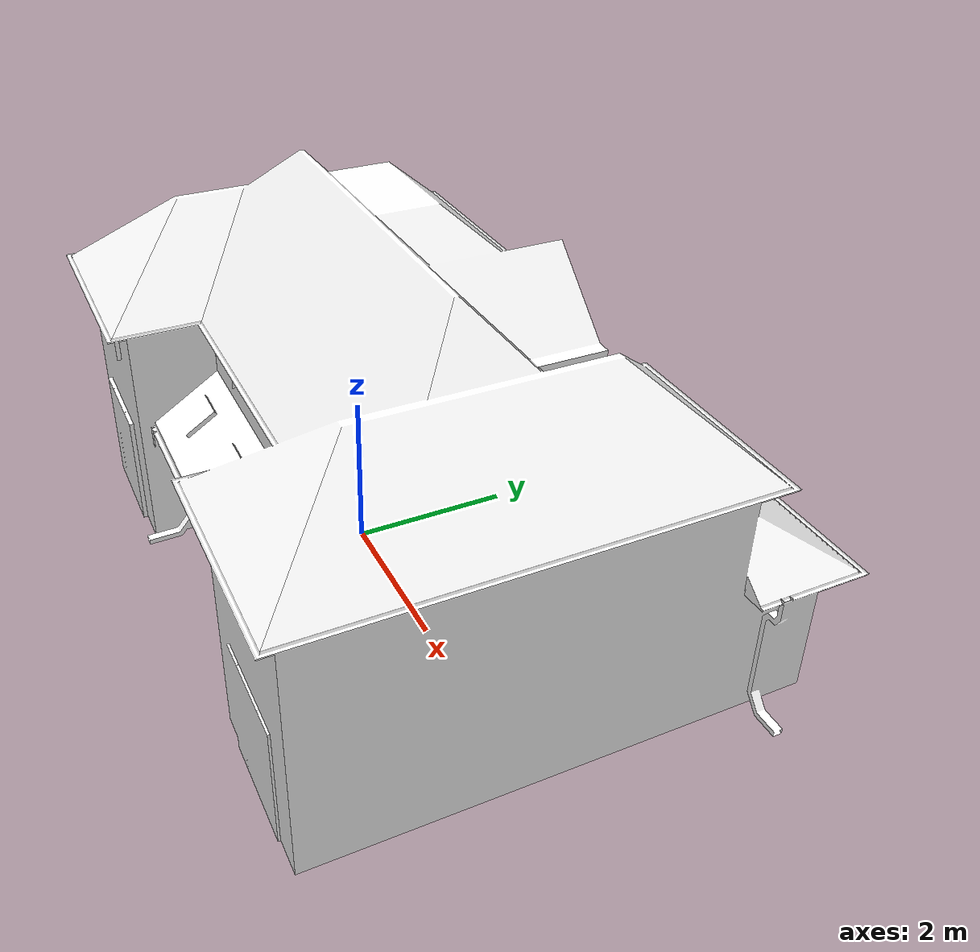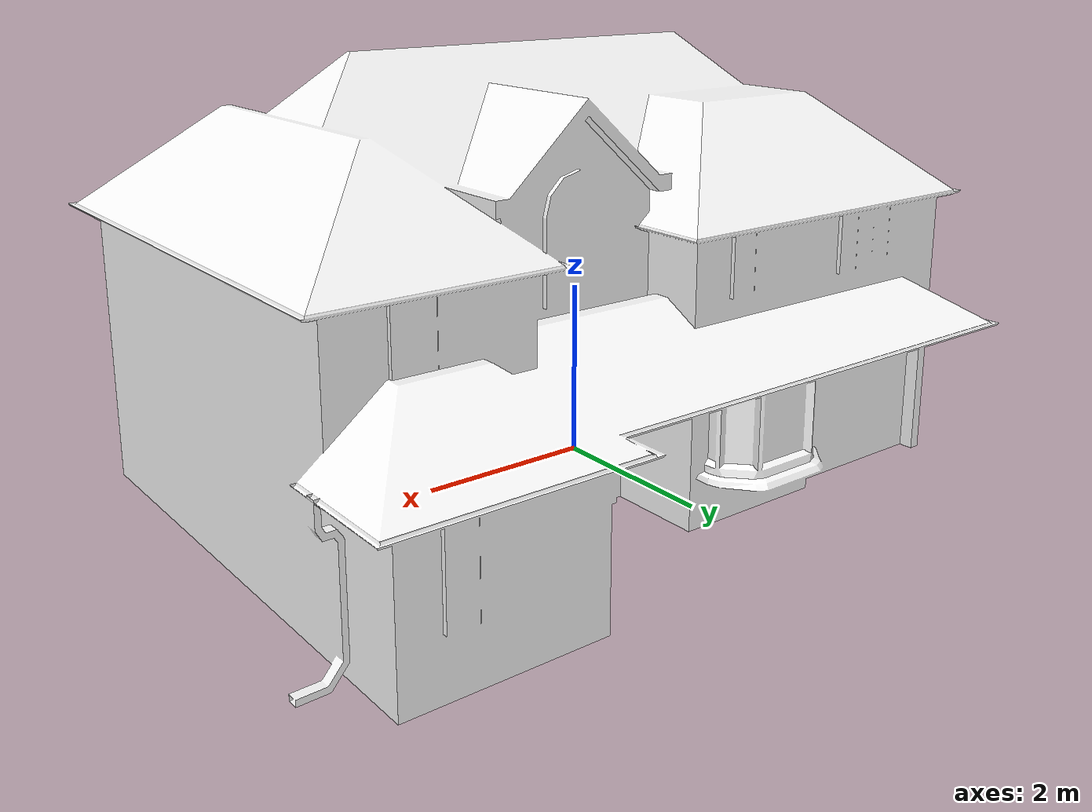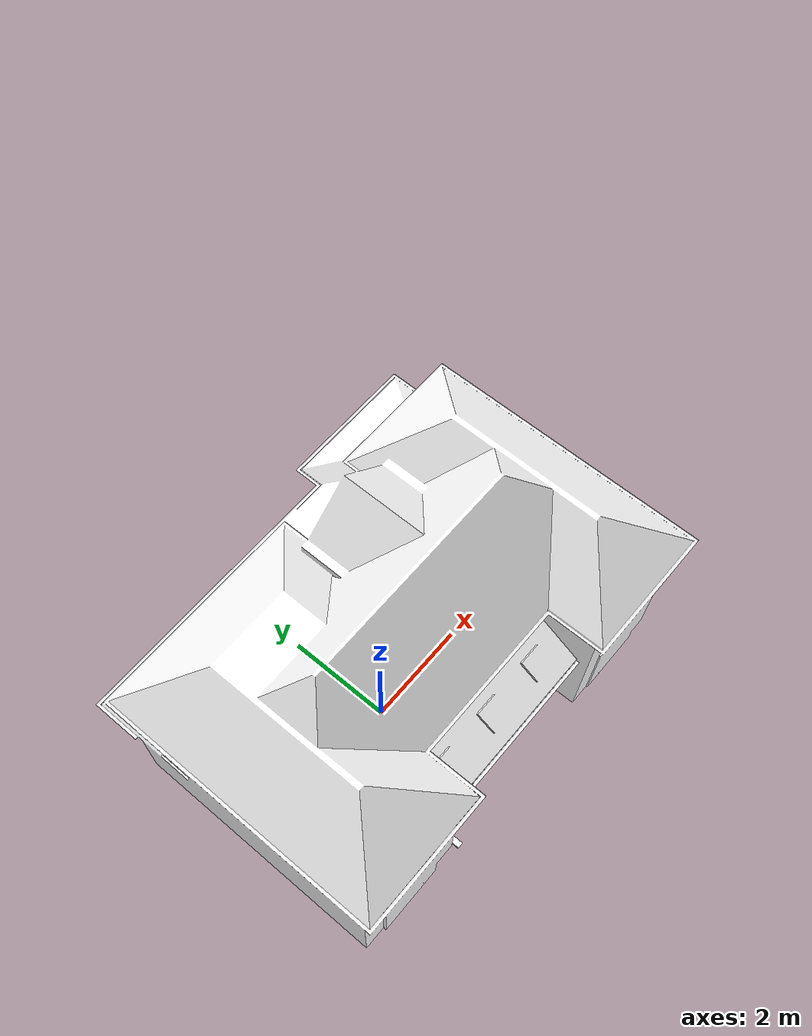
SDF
<?xml version="1.0"?>
<sdf version="1.4">
  <model name="House 2">
    <static>true</static>
    <link name="link">
      <collision name="collision">
        <geometry>
          <mesh>
            <uri>model://house_2/meshes/house_2.dae</uri>
          </mesh>
        </geometry>
      </collision>
      <visual name="visual">
        <geometry>
          <mesh>
            <uri>model://house_2/meshes/house_2.dae</uri>
          </mesh>
        </geometry>
        <material>
          <script>
            <uri>model://house_2/materials/scripts</uri>
            <uri>model://house_2/materials/textures</uri>
            <uri>model://house_1/materials/textures</uri>
            <name>House_2/Diffuse</name>
          </script>

          <shader type="normal_map_object_space">
            <normal_map>model://house_1/materials/textures/House_1_Normal.png</normal_map>
          </shader>
        </material>
      </visual>
    </link>
  </model>
</sdf>
